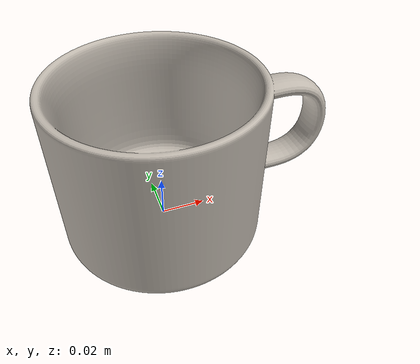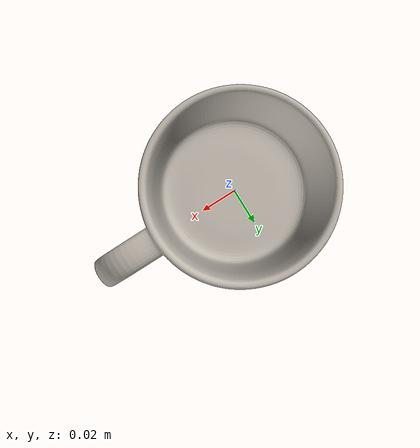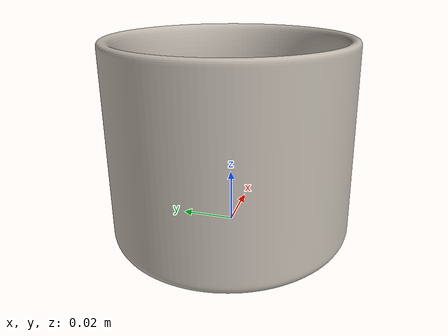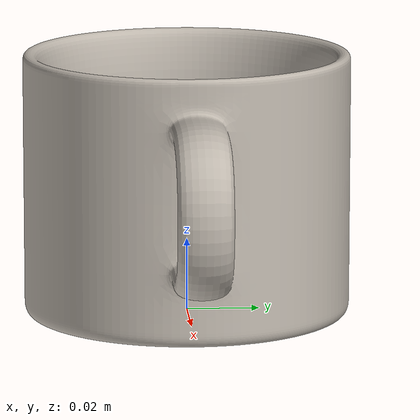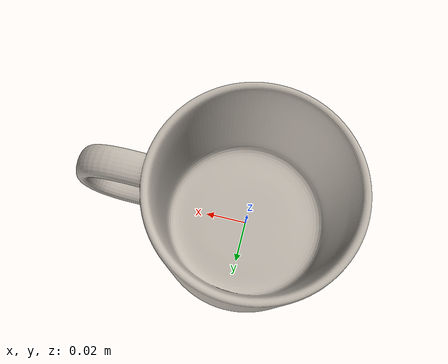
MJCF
<mujoco model="mug">
  <compiler assetdir="assets/mug/"/>

  <asset>
    <texture name="mug" file="mug.png" type="2d"/>
    <material name="mug" texture="mug" specular="1" shininess="1"/>
    <mesh file="mug.obj" scale=".01 .01 .01"/>
    <material name="floor" reflectance=".1"/>
  </asset>

  <default>
    <default class="mug">
      <default class="visual">
        <geom group="2" contype="0" conaffinity="0"/>
      </default>
      <default class="collision">
        <geom group="3" condim="3" margin="0.001"/>
        <default class="cup_collision">
          <geom group="3" condim="3" margin="0.001" type="box" size="0.0026 0.00704 0.033"/>
        </default>
        <default class="handle_collision">
          <geom group="3" condim="3" margin="0.001" type="box" size="0.0025 0.00328 0.0055"/>
        </default>
      </default>
    </default>
  </default>

  <worldbody>
    <body name="mug_body" childclass="mug">
      <freejoint name="mug_joint"/>
      <geom class="visual" type="mesh" mesh="mug" material="mug" euler="0 0 90"/>
      <geom class="cup_collision" pos="0.0418 0 0.038" euler="0 0 0"/>
      <geom class="cup_collision" pos="0.0398 0.0129 0.038" euler="0 0 18"/>
      <geom class="cup_collision" pos="0.0339 0.0246 0.038" euler="0 0 36"/>
      <geom class="cup_collision" pos="0.0246 0.0339 0.038" euler="0 0 54"/>
      <geom class="cup_collision" pos="0.0129 0.0398 0.038" euler="0 0 72"/>
      <geom class="cup_collision" pos="0 0.0418 0.038" euler="0 0 90"/>
      <geom class="cup_collision" pos="-0.0129 0.0398 0.038" euler="0 0 108"/>
      <geom class="cup_collision" pos="-0.0246 0.0339 0.038" euler="0 0 126"/>
      <geom class="cup_collision" pos="-0.0339 0.0246 0.038" euler="0 0 144"/>
      <geom class="cup_collision" pos="-0.0398 0.0129 0.038" euler="0 0 162"/>
      <geom class="cup_collision" pos="-0.0418 0 0.038" euler="0 0 180"/>
      <geom class="cup_collision" pos="-0.0398 -0.0129 0.038" euler="0 0 198"/>
      <geom class="cup_collision" pos="-0.0339 -0.0246 0.038" euler="0 0 216"/>
      <geom class="cup_collision" pos="-0.0246 -0.0339 0.038" euler="0 0 234"/>
      <geom class="cup_collision" pos="-0.0129 -0.0398 0.038" euler="0 0 252"/>
      <geom class="cup_collision" pos="0 -0.0418 0.038" euler="0 0 270"/>
      <geom class="cup_collision" pos="0.0129 -0.0398 0.038" euler="0 0 288"/>
      <geom class="cup_collision" pos="0.0246 -0.0339 0.038" euler="0 0 306"/>
      <geom class="cup_collision" pos="0.0339 -0.0246 0.038" euler="0 0 324"/>
      <geom class="cup_collision" pos="0.0398 -0.0129 0.038" euler="0 0 342"/>
      <geom class="collision" type="cylinder" size="0.045 0.0026" pos="0 0 0.0026"/>
      <body name="handle" pos="0.056 0 0.0395" euler="90 0 0">
        <geom class="handle_collision" pos="0.0193 0 0" euler="0 0 0"/>
        <geom class="handle_collision" pos="0.0184 0.00568 0" euler="0 0 17.1"/>
        <geom class="handle_collision" pos="0.0159 0.0108 0" euler="0 0 34.3"/>
        <geom class="handle_collision" pos="0.012 0.0151 0" euler="0 0 51.4"/>
        <geom class="handle_collision" pos="0.00703 0.0179 0" euler="0 0 68.6"/>
        <geom class="handle_collision" pos="0.00144 0.0192 0" euler="0 0 85.7"/>
        <geom class="handle_collision" pos="0.00144 -0.0192 0" euler="0 0 274"/>
        <geom class="handle_collision" pos="0.00703 -0.0179 0" euler="0 0 291"/>
        <geom class="handle_collision" pos="0.012 -0.0151 0" euler="0 0 309"/>
        <geom class="handle_collision" pos="0.0159 -0.0108 0" euler="0 0 326"/>
        <geom class="handle_collision" pos="0.0184 -0.00568 0" euler="0 0 343"/>
        <geom class="collision" type="box" size="0.007 0.0025 0.0055" pos="-0.007 -0.0195 0"/>
        <geom class="collision" type="box" size="0.007 0.0025 0.0055" pos="-0.007 0.0195 0"/>
      </body>
    </body>
  </worldbody>
</mujoco>
